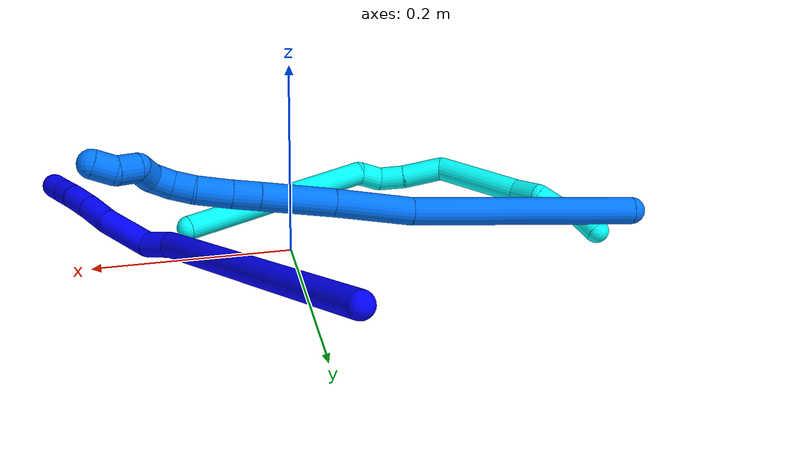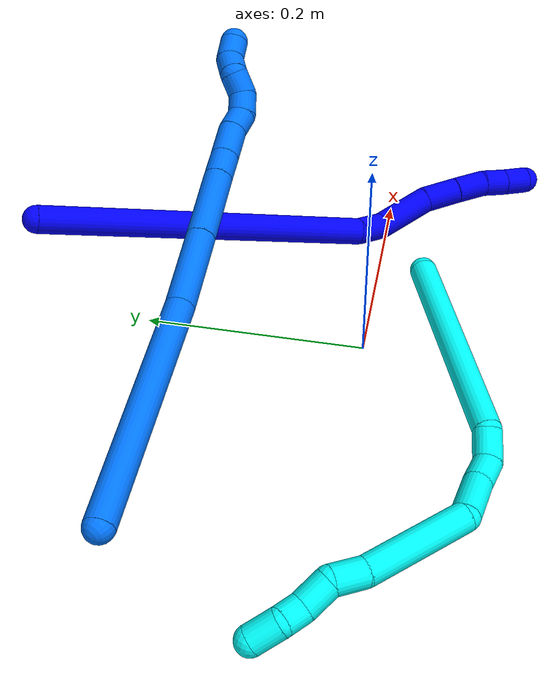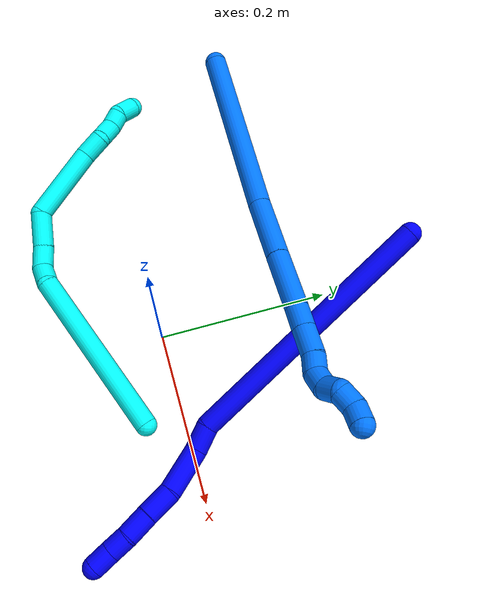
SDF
<sdf version="1.7">
 <world name="default">
  <model name="photoneo_s_sensor">
   <static>1</static>
   <pose>0 0 2 1.57079 1.57079 3.14159</pose>
   <link name="link">
    <inertial><mass>0.1</mass></inertial>
    <sensor name="sensor" type="depth">
     <update_rate>30</update_rate>
     <camera>
      <horizontal_fov>1.22</horizontal_fov>
      <image><width>1920</width><height>1200</height><format>B8G8R8</format></image>
      <clip><near>0.1</near><far>4</far></clip>
      <depth_camera><output>points</output></depth_camera>
     </camera>
     <plugin name="camera_plugin" filename="libgazebo_ros_depth_camera.so">
      <baseline>0.2</baseline>
      <alwaysOn>1</alwaysOn>
      <updateRate>0.0</updateRate>
      <cameraName>camera_ir</cameraName>
      <imageTopicName>/camera/color/image_raw</imageTopicName>
      <cameraInfoTopicName>/camera/color/camera_info</cameraInfoTopicName>
      <depthImageTopicName>/camera/depth/image_raw</depthImageTopicName>
      <depthImageCameraInfoTopicName>/camera/depth/camera_info</depthImageCameraInfoTopicName>
      <pointCloudTopicName>/camera/depth/points</pointCloudTopicName>
      <frameName>fr_optical</frameName>
      <pointCloudCutoff>0.1</pointCloudCutoff>
      <pointCloudCutoffMax>2.0</pointCloudCutoffMax>
      <distortionK1>0</distortionK1>
      <distortionK2>0</distortionK2>
      <distortionK3>0</distortionK3>
      <distortionT1>0</distortionT1>
      <distortionT2>0</distortionT2>
      <CxPrime>0</CxPrime>
      <Cx>0</Cx>
      <Cy>0</Cy>
      <focalLength>0</focalLength>
      <hackBaseline>0</hackBaseline>
     </plugin>
    </sensor>
   </link>
  </model>
  <model name="bin">
   <static>1</static>
   <link name="bottom">
    <collision name="collision-bottom">
     <pose>0 0 -0.01 0 -0 0</pose>
     <geometry><box><size>0.8 0.6 0.02</size></box></geometry>
     <surface>
      <friction><ode><mu>100</mu><mu2>100</mu2></ode></friction>
      <contact><collide_bitmask>65535</collide_bitmask></contact>
     </surface>
    </collision>
   </link>
   <link name="west_wall">
    <collision name="collision-west_wall">
     <pose>-0.41 0 0.1 0 -0 0</pose>
     <geometry><box><size>0.02 0.6 0.2</size></box></geometry>
     <surface>
      <friction><ode><mu>100</mu><mu2>100</mu2></ode></friction>
      <contact><collide_bitmask>65535</collide_bitmask></contact>
     </surface>
    </collision>
   </link>
   <link name="east_wall">
    <collision name="collision-east_wall">
     <pose>0.41 0 0.1 0 -0 0</pose>
     <geometry><box><size>0.02 0.6 0.2</size></box></geometry>
     <surface>
      <friction><ode><mu>100</mu><mu2>100</mu2></ode></friction>
      <contact><collide_bitmask>65535</collide_bitmask></contact>
     </surface>
    </collision>
   </link>
   <link name="south_wall">
    <collision name="collision-south_wall">
     <pose>0 -0.31 0.1 0 -0 0</pose>
     <geometry><box><size>0.8 0.02 0.2</size></box></geometry>
     <surface>
      <friction><ode><mu>100</mu><mu2>100</mu2></ode></friction>
      <contact><collide_bitmask>65535</collide_bitmask></contact>
     </surface>
    </collision>
   </link>
   <link name="north_wall">
    <collision name="collision-north_wall">
     <pose>0 0.31 0.1 0 -0 0</pose>
     <geometry><box><size>0.8 0.02 0.2</size></box></geometry>
     <surface>
      <friction><ode><mu>100</mu><mu2>100</mu2></ode></friction>
      <contact><collide_bitmask>65535</collide_bitmask></contact>
     </surface>
    </collision>
   </link>
  </model>
  <model name="1">
   <static>0</static>
   <link name="1">
    <collision name="collision-cylinder-e_1_1_4">
     <pose>0.039707 -0.030496 0.144588 0.207872 0.262507 0.027539</pose>
     <geometry><cylinder><radius>0.0125</radius><length>0.306021</length></cylinder></geometry>
     <surface>
      <friction><ode><mu>1.16</mu><mu2>1.16</mu2><slip1>0</slip1><slip2>0</slip2></ode></friction>
      <contact><ode><kp>1e+06</kp><kd>1</kd><max_vel>0</max_vel><min_depth>0.001</min_depth></ode></contact>
     </surface>
    </collision>
    <visual name="visual-cylinder-e_1_1_4">
     <pose>0.039707 -0.030496 0.144588 0.207872 0.262507 0.027539</pose>
     <geometry><cylinder><radius>0.0125</radius><length>0.306021</length></cylinder></geometry>
     <material><ambient>0 0 1 1</ambient></material>
    </visual>
    <collision name="collision-cylinder-e_2_4_5">
     <pose>0.083976 -0.058505 0.303322 -0.174083 0.307562 -0.02705</pose>
     <geometry><cylinder><radius>0.0125</radius><length>0.030142</length></cylinder></geometry>
     <surface>
      <friction><ode><mu>1.16</mu><mu2>1.16</mu2><slip1>0</slip1><slip2>0</slip2></ode></friction>
      <contact><ode><kp>1e+06</kp><kd>1</kd><max_vel>0</max_vel><min_depth>0.001</min_depth></ode></contact>
     </surface>
    </collision>
    <visual name="visual-cylinder-e_2_4_5">
     <pose>0.083976 -0.058505 0.303322 -0.174083 0.307562 -0.02705</pose>
     <geometry><cylinder><radius>0.0125</radius><length>0.030142</length></cylinder></geometry>
     <material><ambient>0 0 1 1</ambient></material>
    </visual>
    <collision name="collision-cylinder-e_3_5_6">
     <pose>0.084824 -0.052026 0.343934 -0.149663 -0.137899 0.010355</pose>
     <geometry><cylinder><radius>0.0125</radius><length>0.054043</length></cylinder></geometry>
     <surface>
      <friction><ode><mu>1.16</mu><mu2>1.16</mu2><slip1>0</slip1><slip2>0</slip2></ode></friction>
      <contact><ode><kp>1e+06</kp><kd>1</kd><max_vel>0</max_vel><min_depth>0.001</min_depth></ode></contact>
     </surface>
    </collision>
    <visual name="visual-cylinder-e_3_5_6">
     <pose>0.084824 -0.052026 0.343934 -0.149663 -0.137899 0.010355</pose>
     <geometry><cylinder><radius>0.0125</radius><length>0.054043</length></cylinder></geometry>
     <material><ambient>0 0 1 1</ambient></material>
    </visual>
    <collision name="collision-cylinder-e_4_6_7">
     <pose>0.07992 -0.049669 0.387039 0.097863 -0.071012 -0.003479</pose>
     <geometry><cylinder><radius>0.0125</radius><length>0.033524</length></cylinder></geometry>
     <surface>
      <friction><ode><mu>1.16</mu><mu2>1.16</mu2><slip1>0</slip1><slip2>0</slip2></ode></friction>
      <contact><ode><kp>1e+06</kp><kd>1</kd><max_vel>0</max_vel><min_depth>0.001</min_depth></ode></contact>
     </surface>
    </collision>
    <visual name="visual-cylinder-e_4_6_7">
     <pose>0.07992 -0.049669 0.387039 0.097863 -0.071012 -0.003479</pose>
     <geometry><cylinder><radius>0.0125</radius><length>0.033524</length></cylinder></geometry>
     <material><ambient>0 0 1 1</ambient></material>
    </visual>
    <collision name="collision-cylinder-e_5_7_8">
     <pose>0.078472 -0.052462 0.418593 0.077551 -0.017314 -0.000672</pose>
     <geometry><cylinder><radius>0.0125</radius><length>0.029922</length></cylinder></geometry>
     <surface>
      <friction><ode><mu>1.16</mu><mu2>1.16</mu2><slip1>0</slip1><slip2>0</slip2></ode></friction>
      <contact><ode><kp>1e+06</kp><kd>1</kd><max_vel>0</max_vel><min_depth>0.001</min_depth></ode></contact>
     </surface>
    </collision>
    <visual name="visual-cylinder-e_5_7_8">
     <pose>0.078472 -0.052462 0.418593 0.077551 -0.017314 -0.000672</pose>
     <geometry><cylinder><radius>0.0125</radius><length>0.029922</length></cylinder></geometry>
     <material><ambient>0 0 1 1</ambient></material>
    </visual>
    <collision name="collision-cylinder-e_6_8_9">
     <pose>0.079764 -0.055832 0.444472 0.199059 0.137829 0.013785</pose>
     <geometry><cylinder><radius>0.0125</radius><length>0.022586</length></cylinder></geometry>
     <surface>
      <friction><ode><mu>1.16</mu><mu2>1.16</mu2><slip1>0</slip1><slip2>0</slip2></ode></friction>
      <contact><ode><kp>1e+06</kp><kd>1</kd><max_vel>0</max_vel><min_depth>0.001</min_depth></ode></contact>
     </surface>
    </collision>
    <visual name="visual-cylinder-e_6_8_9">
     <pose>0.079764 -0.055832 0.444472 0.199059 0.137829 0.013785</pose>
     <geometry><cylinder><radius>0.0125</radius><length>0.022586</length></cylinder></geometry>
     <material><ambient>0 0 1 1</ambient></material>
    </visual>
    <collision name="collision-cylinder-e_7_9_2">
     <pose>0.08249 -0.060022 0.467093 0.168066 0.098988 0.008345</pose>
     <geometry><cylinder><radius>0.0125</radius><length>0.023763</length></cylinder></geometry>
     <surface>
      <friction><ode><mu>1.16</mu><mu2>1.16</mu2><slip1>0</slip1><slip2>0</slip2></ode></friction>
      <contact><ode><kp>1e+06</kp><kd>1</kd><max_vel>0</max_vel><min_depth>0.001</min_depth></ode></contact>
     </surface>
    </collision>
    <visual name="visual-cylinder-e_7_9_2">
     <pose>0.08249 -0.060022 0.467093 0.168066 0.098988 0.008345</pose>
     <geometry><cylinder><radius>0.0125</radius><length>0.023763</length></cylinder></geometry>
     <material><ambient>0 0 1 1</ambient></material>
    </visual>
    <collision name="collision-sphere-2">
     <pose>0.083664 -0.062 0.47875 0 -0 0</pose>
     <geometry><sphere><radius>0.0125</radius></sphere></geometry>
     <surface>
      <friction><ode><mu>1.16</mu><mu2>1.16</mu2><slip1>0</slip1><slip2>0</slip2></ode></friction>
      <contact><ode><kp>1e+06</kp><kd>1</kd><max_vel>0</max_vel><min_depth>0.001</min_depth></ode></contact>
     </surface>
    </collision>
    <visual name="visual-sphere-2">
     <pose>0.083664 -0.062 0.47875 0 -0 0</pose>
     <geometry><sphere><radius>0.0125</radius></sphere></geometry>
     <material><ambient>0 0 1 1</ambient></material>
    </visual>
    <collision name="collision-sphere-9">
     <pose>0.081316 -0.058044 0.455437 0 -0 0</pose>
     <geometry><sphere><radius>0.0125</radius></sphere></geometry>
     <surface>
      <friction><ode><mu>1.16</mu><mu2>1.16</mu2><slip1>0</slip1><slip2>0</slip2></ode></friction>
      <contact><ode><kp>1e+06</kp><kd>1</kd><max_vel>0</max_vel><min_depth>0.001</min_depth></ode></contact>
     </surface>
    </collision>
    <visual name="visual-sphere-9">
     <pose>0.081316 -0.058044 0.455437 0 -0 0</pose>
     <geometry><sphere><radius>0.0125</radius></sphere></geometry>
     <material><ambient>0 0 1 1</ambient></material>
    </visual>
    <collision name="collision-sphere-4">
     <pose>0.079413 -0.060993 0.289175 0 -0 0</pose>
     <geometry><sphere><radius>0.0125</radius></sphere></geometry>
     <surface>
      <friction><ode><mu>1.16</mu><mu2>1.16</mu2><slip1>0</slip1><slip2>0</slip2></ode></friction>
      <contact><ode><kp>1e+06</kp><kd>1</kd><max_vel>0</max_vel><min_depth>0.001</min_depth></ode></contact>
     </surface>
    </collision>
    <visual name="visual-sphere-4">
     <pose>0.079413 -0.060993 0.289175 0 -0 0</pose>
     <geometry><sphere><radius>0.0125</radius></sphere></geometry>
     <material><ambient>0 0 1 1</ambient></material>
    </visual>
    <collision name="collision-sphere-1">
     <geometry><sphere><radius>0.0125</radius></sphere></geometry>
     <surface>
      <friction><ode><mu>1.16</mu><mu2>1.16</mu2><slip1>0</slip1><slip2>0</slip2></ode></friction>
      <contact><ode><kp>1e+06</kp><kd>1</kd><max_vel>0</max_vel><min_depth>0.001</min_depth></ode></contact>
     </surface>
    </collision>
    <visual name="visual-sphere-1">
     <geometry><sphere><radius>0.0125</radius></sphere></geometry>
     <material><ambient>0 0 1 1</ambient></material>
    </visual>
    <collision name="collision-sphere-8">
     <pose>0.078213 -0.05362 0.433507 0 -0 0</pose>
     <geometry><sphere><radius>0.0125</radius></sphere></geometry>
     <surface>
      <friction><ode><mu>1.16</mu><mu2>1.16</mu2><slip1>0</slip1><slip2>0</slip2></ode></friction>
      <contact><ode><kp>1e+06</kp><kd>1</kd><max_vel>0</max_vel><min_depth>0.001</min_depth></ode></contact>
     </surface>
    </collision>
    <visual name="visual-sphere-8">
     <pose>0.078213 -0.05362 0.433507 0 -0 0</pose>
     <geometry><sphere><radius>0.0125</radius></sphere></geometry>
     <material><ambient>0 0 1 1</ambient></material>
    </visual>
    <collision name="collision-sphere-5">
     <pose>0.088538 -0.056017 0.317468 0 -0 0</pose>
     <geometry><sphere><radius>0.0125</radius></sphere></geometry>
     <surface>
      <friction><ode><mu>1.16</mu><mu2>1.16</mu2><slip1>0</slip1><slip2>0</slip2></ode></friction>
      <contact><ode><kp>1e+06</kp><kd>1</kd><max_vel>0</max_vel><min_depth>0.001</min_depth></ode></contact>
     </surface>
    </collision>
    <visual name="visual-sphere-5">
     <pose>0.088538 -0.056017 0.317468 0 -0 0</pose>
     <geometry><sphere><radius>0.0125</radius></sphere></geometry>
     <material><ambient>0 0 1 1</ambient></material>
    </visual>
    <collision name="collision-sphere-6">
     <pose>0.08111 -0.048035 0.370399 0 -0 0</pose>
     <geometry><sphere><radius>0.0125</radius></sphere></geometry>
     <surface>
      <friction><ode><mu>1.16</mu><mu2>1.16</mu2><slip1>0</slip1><slip2>0</slip2></ode></friction>
      <contact><ode><kp>1e+06</kp><kd>1</kd><max_vel>0</max_vel><min_depth>0.001</min_depth></ode></contact>
     </surface>
    </collision>
    <visual name="visual-sphere-6">
     <pose>0.08111 -0.048035 0.370399 0 -0 0</pose>
     <geometry><sphere><radius>0.0125</radius></sphere></geometry>
     <material><ambient>0 0 1 1</ambient></material>
    </visual>
    <collision name="collision-sphere-7">
     <pose>0.078731 -0.051303 0.403679 0 -0 0</pose>
     <geometry><sphere><radius>0.0125</radius></sphere></geometry>
     <surface>
      <friction><ode><mu>1.16</mu><mu2>1.16</mu2><slip1>0</slip1><slip2>0</slip2></ode></friction>
      <contact><ode><kp>1e+06</kp><kd>1</kd><max_vel>0</max_vel><min_depth>0.001</min_depth></ode></contact>
     </surface>
    </collision>
    <visual name="visual-sphere-7">
     <pose>0.078731 -0.051303 0.403679 0 -0 0</pose>
     <geometry><sphere><radius>0.0125</radius></sphere></geometry>
     <material><ambient>0 0 1 1</ambient></material>
    </visual>
    <inertial>
     <pose>0.056111 -0.039659 0.23723 0 -0 0</pose>
     <mass>0.5</mass>
     <inertia>
      <ixx>0.002418</ixx>
      <ixy>0</ixy>
      <ixz>0</ixz>
      <iyy>0.00244</iyy>
      <iyz>0</iyz>
      <izz>-0.000108</izz>
     </inertia>
    </inertial>
   </link>
   <pose>-0.006765 0.288398 0.114786 1.46129 1.46125 0.521222</pose>
  </model>
  <model name="3">
   <static>0</static>
   <link name="3">
    <collision name="collision-cylinder-e_1_1_4">
     <pose>-0.075661 -0.007744 0.070565 0.109305 -0.817246 -0.047367</pose>
     <geometry><cylinder><radius>0.0125</radius><length>0.207499</length></cylinder></geometry>
     <surface>
      <friction><ode><mu>1.16</mu><mu2>1.16</mu2><slip1>0</slip1><slip2>0</slip2></ode></friction>
      <contact><ode><kp>1e+06</kp><kd>1</kd><max_vel>0</max_vel><min_depth>0.001</min_depth></ode></contact>
     </surface>
    </collision>
    <visual name="visual-cylinder-e_1_1_4">
     <pose>-0.075661 -0.007744 0.070565 0.109305 -0.817246 -0.047367</pose>
     <geometry><cylinder><radius>0.0125</radius><length>0.207499</length></cylinder></geometry>
     <material><ambient>0.003922 1 0.996078 1</ambient></material>
    </visual>
    <collision name="collision-cylinder-e_2_4_5">
     <pose>-0.16107 -0.022652 0.147243 0.864384 -0.802645 -0.3866</pose>
     <geometry><cylinder><radius>0.0125</radius><length>0.027108</length></cylinder></geometry>
     <surface>
      <friction><ode><mu>1.16</mu><mu2>1.16</mu2><slip1>0</slip1><slip2>0</slip2></ode></friction>
      <contact><ode><kp>1e+06</kp><kd>1</kd><max_vel>0</max_vel><min_depth>0.001</min_depth></ode></contact>
     </surface>
    </collision>
    <visual name="visual-cylinder-e_2_4_5">
     <pose>-0.16107 -0.022652 0.147243 0.864384 -0.802645 -0.3866</pose>
     <geometry><cylinder><radius>0.0125</radius><length>0.027108</length></cylinder></geometry>
     <material><ambient>0.003922 1 0.996078 1</ambient></material>
    </visual>
    <collision name="collision-cylinder-e_3_5_6">
     <pose>-0.184411 -0.030031 0.155147 0.119801 -1.43884 -0.10498</pose>
     <geometry><cylinder><radius>0.0125</radius><length>0.027425</length></cylinder></geometry>
     <surface>
      <friction><ode><mu>1.16</mu><mu2>1.16</mu2><slip1>0</slip1><slip2>0</slip2></ode></friction>
      <contact><ode><kp>1e+06</kp><kd>1</kd><max_vel>0</max_vel><min_depth>0.001</min_depth></ode></contact>
     </surface>
    </collision>
    <visual name="visual-cylinder-e_3_5_6">
     <pose>-0.184411 -0.030031 0.155147 0.119801 -1.43884 -0.10498</pose>
     <geometry><cylinder><radius>0.0125</radius><length>0.027425</length></cylinder></geometry>
     <material><ambient>0.003922 1 0.996078 1</ambient></material>
    </visual>
    <collision name="collision-cylinder-e_4_6_7">
     <pose>-0.218633 -0.028451 0.161374 -0.384753 -1.34286 0.307112</pose>
     <geometry><cylinder><radius>0.0125</radius><length>0.042354</length></cylinder></geometry>
     <surface>
      <friction><ode><mu>1.16</mu><mu2>1.16</mu2><slip1>0</slip1><slip2>0</slip2></ode></friction>
      <contact><ode><kp>1e+06</kp><kd>1</kd><max_vel>0</max_vel><min_depth>0.001</min_depth></ode></contact>
     </surface>
    </collision>
    <visual name="visual-cylinder-e_4_6_7">
     <pose>-0.218633 -0.028451 0.161374 -0.384753 -1.34286 0.307112</pose>
     <geometry><cylinder><radius>0.0125</radius><length>0.042354</length></cylinder></geometry>
     <material><ambient>0.003922 1 0.996078 1</ambient></material>
    </visual>
    <collision name="collision-cylinder-e_5_7_8">
     <pose>-0.281284 -0.032454 0.145959 2.85736 -1.11347 -2.68968</pose>
     <geometry><cylinder><radius>0.0125</radius><length>0.09367</length></cylinder></geometry>
     <surface>
      <friction><ode><mu>1.16</mu><mu2>1.16</mu2><slip1>0</slip1><slip2>0</slip2></ode></friction>
      <contact><ode><kp>1e+06</kp><kd>1</kd><max_vel>0</max_vel><min_depth>0.001</min_depth></ode></contact>
     </surface>
    </collision>
    <visual name="visual-cylinder-e_5_7_8">
     <pose>-0.281284 -0.032454 0.145959 2.85736 -1.11347 -2.68968</pose>
     <geometry><cylinder><radius>0.0125</radius><length>0.09367</length></cylinder></geometry>
     <material><ambient>0.003922 1 0.996078 1</ambient></material>
    </visual>
    <collision name="collision-cylinder-e_6_8_9">
     <pose>-0.335368 -0.037405 0.117991 -3.03746 -0.975917 2.94585</pose>
     <geometry><cylinder><radius>0.0125</radius><length>0.029128</length></cylinder></geometry>
     <surface>
      <friction><ode><mu>1.16</mu><mu2>1.16</mu2><slip1>0</slip1><slip2>0</slip2></ode></friction>
      <contact><ode><kp>1e+06</kp><kd>1</kd><max_vel>0</max_vel><min_depth>0.001</min_depth></ode></contact>
     </surface>
    </collision>
    <visual name="visual-cylinder-e_6_8_9">
     <pose>-0.335368 -0.037405 0.117991 -3.03746 -0.975917 2.94585</pose>
     <geometry><cylinder><radius>0.0125</radius><length>0.029128</length></cylinder></geometry>
     <material><ambient>0.003922 1 0.996078 1</ambient></material>
    </visual>
    <collision name="collision-cylinder-e_7_9_10">
     <pose>-0.358503 -0.043183 0.105717 2.13105 -0.955754 -1.505</pose>
     <geometry><cylinder><radius>0.0125</radius><length>0.027116</length></cylinder></geometry>
     <surface>
      <friction><ode><mu>1.16</mu><mu2>1.16</mu2><slip1>0</slip1><slip2>0</slip2></ode></friction>
      <contact><ode><kp>1e+06</kp><kd>1</kd><max_vel>0</max_vel><min_depth>0.001</min_depth></ode></contact>
     </surface>
    </collision>
    <visual name="visual-cylinder-e_7_9_10">
     <pose>-0.358503 -0.043183 0.105717 2.13105 -0.955754 -1.505</pose>
     <geometry><cylinder><radius>0.0125</radius><length>0.027116</length></cylinder></geometry>
     <material><ambient>0.003922 1 0.996078 1</ambient></material>
    </visual>
    <collision name="collision-cylinder-e_8_10_11">
     <pose>-0.379017 -0.050735 0.098354 2.86075 -1.23113 -2.74706</pose>
     <geometry><cylinder><radius>0.0125</radius><length>0.020025</length></cylinder></geometry>
     <surface>
      <friction><ode><mu>1.16</mu><mu2>1.16</mu2><slip1>0</slip1><slip2>0</slip2></ode></friction>
      <contact><ode><kp>1e+06</kp><kd>1</kd><max_vel>0</max_vel><min_depth>0.001</min_depth></ode></contact>
     </surface>
    </collision>
    <visual name="visual-cylinder-e_8_10_11">
     <pose>-0.379017 -0.050735 0.098354 2.86075 -1.23113 -2.74706</pose>
     <geometry><cylinder><radius>0.0125</radius><length>0.020025</length></cylinder></geometry>
     <material><ambient>0.003922 1 0.996078 1</ambient></material>
    </visual>
    <collision name="collision-cylinder-e_9_11_2">
     <pose>-0.3971 -0.058132 0.088204 2.3914 -0.738468 -1.55349</pose>
     <geometry><cylinder><radius>0.0125</radius><length>0.025676</length></cylinder></geometry>
     <surface>
      <friction><ode><mu>1.16</mu><mu2>1.16</mu2><slip1>0</slip1><slip2>0</slip2></ode></friction>
      <contact><ode><kp>1e+06</kp><kd>1</kd><max_vel>0</max_vel><min_depth>0.001</min_depth></ode></contact>
     </surface>
    </collision>
    <visual name="visual-cylinder-e_9_11_2">
     <pose>-0.3971 -0.058132 0.088204 2.3914 -0.738468 -1.55349</pose>
     <geometry><cylinder><radius>0.0125</radius><length>0.025676</length></cylinder></geometry>
     <material><ambient>0.003922 1 0.996078 1</ambient></material>
    </visual>
    <collision name="collision-sphere-2">
     <pose>-0.405742 -0.064605 0.081258 0 -0 0</pose>
     <geometry><sphere><radius>0.0125</radius></sphere></geometry>
     <surface>
      <friction><ode><mu>1.16</mu><mu2>1.16</mu2><slip1>0</slip1><slip2>0</slip2></ode></friction>
      <contact><ode><kp>1e+06</kp><kd>1</kd><max_vel>0</max_vel><min_depth>0.001</min_depth></ode></contact>
     </surface>
    </collision>
    <visual name="visual-sphere-2">
     <pose>-0.405742 -0.064605 0.081258 0 -0 0</pose>
     <geometry><sphere><radius>0.0125</radius></sphere></geometry>
     <material><ambient>0.003922 1 0.996078 1</ambient></material>
    </visual>
    <collision name="collision-sphere-11">
     <pose>-0.388458 -0.051659 0.095149 0 -0 0</pose>
     <geometry><sphere><radius>0.0125</radius></sphere></geometry>
     <surface>
      <friction><ode><mu>1.16</mu><mu2>1.16</mu2><slip1>0</slip1><slip2>0</slip2></ode></friction>
      <contact><ode><kp>1e+06</kp><kd>1</kd><max_vel>0</max_vel><min_depth>0.001</min_depth></ode></contact>
     </surface>
    </collision>
    <visual name="visual-sphere-11">
     <pose>-0.388458 -0.051659 0.095149 0 -0 0</pose>
     <geometry><sphere><radius>0.0125</radius></sphere></geometry>
     <material><ambient>0.003922 1 0.996078 1</ambient></material>
    </visual>
    <collision name="collision-sphere-10">
     <pose>-0.369577 -0.04981 0.10156 0 -0 0</pose>
     <geometry><sphere><radius>0.0125</radius></sphere></geometry>
     <surface>
      <friction><ode><mu>1.16</mu><mu2>1.16</mu2><slip1>0</slip1><slip2>0</slip2></ode></friction>
      <contact><ode><kp>1e+06</kp><kd>1</kd><max_vel>0</max_vel><min_depth>0.001</min_depth></ode></contact>
     </surface>
    </collision>
    <visual name="visual-sphere-10">
     <pose>-0.369577 -0.04981 0.10156 0 -0 0</pose>
     <geometry><sphere><radius>0.0125</radius></sphere></geometry>
     <material><ambient>0.003922 1 0.996078 1</ambient></material>
    </visual>
    <collision name="collision-sphere-9">
     <pose>-0.34743 -0.036556 0.109874 0 -0 0</pose>
     <geometry><sphere><radius>0.0125</radius></sphere></geometry>
     <surface>
      <friction><ode><mu>1.16</mu><mu2>1.16</mu2><slip1>0</slip1><slip2>0</slip2></ode></friction>
      <contact><ode><kp>1e+06</kp><kd>1</kd><max_vel>0</max_vel><min_depth>0.001</min_depth></ode></contact>
     </surface>
    </collision>
    <visual name="visual-sphere-9">
     <pose>-0.34743 -0.036556 0.109874 0 -0 0</pose>
     <geometry><sphere><radius>0.0125</radius></sphere></geometry>
     <material><ambient>0.003922 1 0.996078 1</ambient></material>
    </visual>
    <collision name="collision-sphere-4">
     <pose>-0.151321 -0.015488 0.14113 0 -0 0</pose>
     <geometry><sphere><radius>0.0125</radius></sphere></geometry>
     <surface>
      <friction><ode><mu>1.16</mu><mu2>1.16</mu2><slip1>0</slip1><slip2>0</slip2></ode></friction>
      <contact><ode><kp>1e+06</kp><kd>1</kd><max_vel>0</max_vel><min_depth>0.001</min_depth></ode></contact>
     </surface>
    </collision>
    <visual name="visual-sphere-4">
     <pose>-0.151321 -0.015488 0.14113 0 -0 0</pose>
     <geometry><sphere><radius>0.0125</radius></sphere></geometry>
     <material><ambient>0.003922 1 0.996078 1</ambient></material>
    </visual>
    <collision name="collision-sphere-1">
     <geometry><sphere><radius>0.0125</radius></sphere></geometry>
     <surface>
      <friction><ode><mu>1.16</mu><mu2>1.16</mu2><slip1>0</slip1><slip2>0</slip2></ode></friction>
      <contact><ode><kp>1e+06</kp><kd>1</kd><max_vel>0</max_vel><min_depth>0.001</min_depth></ode></contact>
     </surface>
    </collision>
    <visual name="visual-sphere-1">
     <geometry><sphere><radius>0.0125</radius></sphere></geometry>
     <material><ambient>0.003922 1 0.996078 1</ambient></material>
    </visual>
    <collision name="collision-sphere-8">
     <pose>-0.323306 -0.038253 0.126108 0 -0 0</pose>
     <geometry><sphere><radius>0.0125</radius></sphere></geometry>
     <surface>
      <friction><ode><mu>1.16</mu><mu2>1.16</mu2><slip1>0</slip1><slip2>0</slip2></ode></friction>
      <contact><ode><kp>1e+06</kp><kd>1</kd><max_vel>0</max_vel><min_depth>0.001</min_depth></ode></contact>
     </surface>
    </collision>
    <visual name="visual-sphere-8">
     <pose>-0.323306 -0.038253 0.126108 0 -0 0</pose>
     <geometry><sphere><radius>0.0125</radius></sphere></geometry>
     <material><ambient>0.003922 1 0.996078 1</ambient></material>
    </visual>
    <collision name="collision-sphere-5">
     <pose>-0.170818 -0.029816 0.153356 0 -0 0</pose>
     <geometry><sphere><radius>0.0125</radius></sphere></geometry>
     <surface>
      <friction><ode><mu>1.16</mu><mu2>1.16</mu2><slip1>0</slip1><slip2>0</slip2></ode></friction>
      <contact><ode><kp>1e+06</kp><kd>1</kd><max_vel>0</max_vel><min_depth>0.001</min_depth></ode></contact>
     </surface>
    </collision>
    <visual name="visual-sphere-5">
     <pose>-0.170818 -0.029816 0.153356 0 -0 0</pose>
     <geometry><sphere><radius>0.0125</radius></sphere></geometry>
     <material><ambient>0.003922 1 0.996078 1</ambient></material>
    </visual>
    <collision name="collision-sphere-6">
     <pose>-0.198004 -0.030247 0.156939 0 -0 0</pose>
     <geometry><sphere><radius>0.0125</radius></sphere></geometry>
     <surface>
      <friction><ode><mu>1.16</mu><mu2>1.16</mu2><slip1>0</slip1><slip2>0</slip2></ode></friction>
      <contact><ode><kp>1e+06</kp><kd>1</kd><max_vel>0</max_vel><min_depth>0.001</min_depth></ode></contact>
     </surface>
    </collision>
    <visual name="visual-sphere-6">
     <pose>-0.198004 -0.030247 0.156939 0 -0 0</pose>
     <geometry><sphere><radius>0.0125</radius></sphere></geometry>
     <material><ambient>0.003922 1 0.996078 1</ambient></material>
    </visual>
    <collision name="collision-sphere-7">
     <pose>-0.239262 -0.026655 0.165809 0 -0 0</pose>
     <geometry><sphere><radius>0.0125</radius></sphere></geometry>
     <surface>
      <friction><ode><mu>1.16</mu><mu2>1.16</mu2><slip1>0</slip1><slip2>0</slip2></ode></friction>
      <contact><ode><kp>1e+06</kp><kd>1</kd><max_vel>0</max_vel><min_depth>0.001</min_depth></ode></contact>
     </surface>
    </collision>
    <visual name="visual-sphere-7">
     <pose>-0.239262 -0.026655 0.165809 0 -0 0</pose>
     <geometry><sphere><radius>0.0125</radius></sphere></geometry>
     <material><ambient>0.003922 1 0.996078 1</ambient></material>
    </visual>
    <inertial>
     <pose>-0.196013 -0.024117 0.107866 0 -0 0</pose>
     <mass>0.5</mass>
     <inertia>
      <ixx>0.000414</ixx>
      <ixy>0</ixy>
      <ixz>0</ixz>
      <iyy>0.000794</iyy>
      <iyz>0</iyz>
      <izz>0.000709</izz>
     </inertia>
    </inertial>
   </link>
   <pose>0.099444 -0.043072 0.013027 1.55629 0.151259 -0.391866</pose>
  </model>
  <model name="14">
   <static>0</static>
   <link name="14">
    <collision name="collision-cylinder-e_1_1_4">
     <pose>0.022113 0.034612 -0.094613 -2.79089 0.216069 -1.09863</pose>
     <geometry><cylinder><radius>0.0125</radius><length>0.206286</length></cylinder></geometry>
     <surface>
      <friction><ode><mu>1.16</mu><mu2>1.16</mu2><slip1>0</slip1><slip2>0</slip2></ode></friction>
      <contact><ode><kp>1e+06</kp><kd>1</kd><max_vel>0</max_vel><min_depth>0.001</min_depth></ode></contact>
     </surface>
    </collision>
    <visual name="visual-cylinder-e_1_1_4">
     <pose>0.022113 0.034612 -0.094613 -2.79089 0.216069 -1.09863</pose>
     <geometry><cylinder><radius>0.0125</radius><length>0.206286</length></cylinder></geometry>
     <material><ambient>0 0.462745 1 1</ambient></material>
    </visual>
    <collision name="collision-cylinder-e_2_4_5">
     <pose>0.056177 0.080147 -0.220983 -2.81028 0.34188 -1.6028</pose>
     <geometry><cylinder><radius>0.0125</radius><length>0.071295</length></cylinder></geometry>
     <surface>
      <friction><ode><mu>1.16</mu><mu2>1.16</mu2><slip1>0</slip1><slip2>0</slip2></ode></friction>
      <contact><ode><kp>1e+06</kp><kd>1</kd><max_vel>0</max_vel><min_depth>0.001</min_depth></ode></contact>
     </surface>
    </collision>
    <visual name="visual-cylinder-e_2_4_5">
     <pose>0.056177 0.080147 -0.220983 -2.81028 0.34188 -1.6028</pose>
     <geometry><cylinder><radius>0.0125</radius><length>0.071295</length></cylinder></geometry>
     <material><ambient>0 0.462745 1 1</ambient></material>
    </visual>
    <collision name="collision-cylinder-e_3_5_6">
     <pose>0.078712 0.101727 -0.282148 -2.79396 0.326296 -1.50629</pose>
     <geometry><cylinder><radius>0.0125</radius><length>0.066039</length></cylinder></geometry>
     <surface>
      <friction><ode><mu>1.16</mu><mu2>1.16</mu2><slip1>0</slip1><slip2>0</slip2></ode></friction>
      <contact><ode><kp>1e+06</kp><kd>1</kd><max_vel>0</max_vel><min_depth>0.001</min_depth></ode></contact>
     </surface>
    </collision>
    <visual name="visual-cylinder-e_3_5_6">
     <pose>0.078712 0.101727 -0.282148 -2.79396 0.326296 -1.50629</pose>
     <geometry><cylinder><radius>0.0125</radius><length>0.066039</length></cylinder></geometry>
     <material><ambient>0 0.462745 1 1</ambient></material>
    </visual>
    <collision name="collision-cylinder-e_4_6_7">
     <pose>0.093033 0.116283 -0.322559 -2.80101 0.309776 -1.47446</pose>
     <geometry><cylinder><radius>0.0125</radius><length>0.024518</length></cylinder></geometry>
     <surface>
      <friction><ode><mu>1.16</mu><mu2>1.16</mu2><slip1>0</slip1><slip2>0</slip2></ode></friction>
      <contact><ode><kp>1e+06</kp><kd>1</kd><max_vel>0</max_vel><min_depth>0.001</min_depth></ode></contact>
     </surface>
    </collision>
    <visual name="visual-cylinder-e_4_6_7">
     <pose>0.093033 0.116283 -0.322559 -2.80101 0.309776 -1.47446</pose>
     <geometry><cylinder><radius>0.0125</radius><length>0.024518</length></cylinder></geometry>
     <material><ambient>0 0.462745 1 1</ambient></material>
    </visual>
    <collision name="collision-cylinder-e_5_7_8">
     <pose>0.102148 0.124998 -0.347579 -2.81065 0.348081 -1.62226</pose>
     <geometry><cylinder><radius>0.0125</radius><length>0.03153</length></cylinder></geometry>
     <surface>
      <friction><ode><mu>1.16</mu><mu2>1.16</mu2><slip1>0</slip1><slip2>0</slip2></ode></friction>
      <contact><ode><kp>1e+06</kp><kd>1</kd><max_vel>0</max_vel><min_depth>0.001</min_depth></ode></contact>
     </surface>
    </collision>
    <visual name="visual-cylinder-e_5_7_8">
     <pose>0.102148 0.124998 -0.347579 -2.81065 0.348081 -1.62226</pose>
     <geometry><cylinder><radius>0.0125</radius><length>0.03153</length></cylinder></geometry>
     <material><ambient>0 0.462745 1 1</ambient></material>
    </visual>
    <collision name="collision-cylinder-e_6_8_9">
     <pose>0.110431 0.130804 -0.371124 -3.03797 0.294461 -2.4688</pose>
     <geometry><cylinder><radius>0.0125</radius><length>0.020023</length></cylinder></geometry>
     <surface>
      <friction><ode><mu>1.16</mu><mu2>1.16</mu2><slip1>0</slip1><slip2>0</slip2></ode></friction>
      <contact><ode><kp>1e+06</kp><kd>1</kd><max_vel>0</max_vel><min_depth>0.001</min_depth></ode></contact>
     </surface>
    </collision>
    <visual name="visual-cylinder-e_6_8_9">
     <pose>0.110431 0.130804 -0.371124 -3.03797 0.294461 -2.4688</pose>
     <geometry><cylinder><radius>0.0125</radius><length>0.020023</length></cylinder></geometry>
     <material><ambient>0 0.462745 1 1</ambient></material>
    </visual>
    <collision name="collision-cylinder-e_7_9_10">
     <pose>0.119714 0.13501 -0.38779 -2.71839 0.683681 -2.05525</pose>
     <geometry><cylinder><radius>0.0125</radius><length>0.020193</length></cylinder></geometry>
     <surface>
      <friction><ode><mu>1.16</mu><mu2>1.16</mu2><slip1>0</slip1><slip2>0</slip2></ode></friction>
      <contact><ode><kp>1e+06</kp><kd>1</kd><max_vel>0</max_vel><min_depth>0.001</min_depth></ode></contact>
     </surface>
    </collision>
    <visual name="visual-cylinder-e_7_9_10">
     <pose>0.119714 0.13501 -0.38779 -2.71839 0.683681 -2.05525</pose>
     <geometry><cylinder><radius>0.0125</radius><length>0.020193</length></cylinder></geometry>
     <material><ambient>0 0.462745 1 1</ambient></material>
    </visual>
    <collision name="collision-cylinder-e_8_10_11">
     <pose>0.134888 0.142483 -0.397091 -2.04106 1.07332 -1.54006</pose>
     <geometry><cylinder><radius>0.0125</radius><length>0.020021</length></cylinder></geometry>
     <surface>
      <friction><ode><mu>1.16</mu><mu2>1.16</mu2><slip1>0</slip1><slip2>0</slip2></ode></friction>
      <contact><ode><kp>1e+06</kp><kd>1</kd><max_vel>0</max_vel><min_depth>0.001</min_depth></ode></contact>
     </surface>
    </collision>
    <visual name="visual-cylinder-e_8_10_11">
     <pose>0.134888 0.142483 -0.397091 -2.04106 1.07332 -1.54006</pose>
     <geometry><cylinder><radius>0.0125</radius><length>0.020021</length></cylinder></geometry>
     <material><ambient>0 0.462745 1 1</ambient></material>
    </visual>
    <collision name="collision-cylinder-e_9_11_12">
     <pose>0.147072 0.15337 -0.405991 -2.36412 0.344104 -0.802494</pose>
     <geometry><cylinder><radius>0.0125</radius><length>0.020077</length></cylinder></geometry>
     <surface>
      <friction><ode><mu>1.16</mu><mu2>1.16</mu2><slip1>0</slip1><slip2>0</slip2></ode></friction>
      <contact><ode><kp>1e+06</kp><kd>1</kd><max_vel>0</max_vel><min_depth>0.001</min_depth></ode></contact>
     </surface>
    </collision>
    <visual name="visual-cylinder-e_9_11_12">
     <pose>0.147072 0.15337 -0.405991 -2.36412 0.344104 -0.802494</pose>
     <geometry><cylinder><radius>0.0125</radius><length>0.020077</length></cylinder></geometry>
     <material><ambient>0 0.462745 1 1</ambient></material>
    </visual>
    <collision name="collision-cylinder-e_10_12_2">
     <pose>0.1555 0.162405 -0.421031 -2.85964 0.52786 -2.17443</pose>
     <geometry><cylinder><radius>0.0125</radius><length>0.020018</length></cylinder></geometry>
     <surface>
      <friction><ode><mu>1.16</mu><mu2>1.16</mu2><slip1>0</slip1><slip2>0</slip2></ode></friction>
      <contact><ode><kp>1e+06</kp><kd>1</kd><max_vel>0</max_vel><min_depth>0.001</min_depth></ode></contact>
     </surface>
    </collision>
    <visual name="visual-cylinder-e_10_12_2">
     <pose>0.1555 0.162405 -0.421031 -2.85964 0.52786 -2.17443</pose>
     <geometry><cylinder><radius>0.0125</radius><length>0.020018</length></cylinder></geometry>
     <material><ambient>0 0.462745 1 1</ambient></material>
    </visual>
    <collision name="collision-sphere-2">
     <pose>0.160541 0.164811 -0.429336 0 -0 0</pose>
     <geometry><sphere><radius>0.0125</radius></sphere></geometry>
     <surface>
      <friction><ode><mu>1.16</mu><mu2>1.16</mu2><slip1>0</slip1><slip2>0</slip2></ode></friction>
      <contact><ode><kp>1e+06</kp><kd>1</kd><max_vel>0</max_vel><min_depth>0.001</min_depth></ode></contact>
     </surface>
    </collision>
    <visual name="visual-sphere-2">
     <pose>0.160541 0.164811 -0.429336 0 -0 0</pose>
     <geometry><sphere><radius>0.0125</radius></sphere></geometry>
     <material><ambient>0 0.462745 1 1</ambient></material>
    </visual>
    <collision name="collision-sphere-12">
     <pose>0.150458 0.159999 -0.412726 0 -0 0</pose>
     <geometry><sphere><radius>0.0125</radius></sphere></geometry>
     <surface>
      <friction><ode><mu>1.16</mu><mu2>1.16</mu2><slip1>0</slip1><slip2>0</slip2></ode></friction>
      <contact><ode><kp>1e+06</kp><kd>1</kd><max_vel>0</max_vel><min_depth>0.001</min_depth></ode></contact>
     </surface>
    </collision>
    <visual name="visual-sphere-12">
     <pose>0.150458 0.159999 -0.412726 0 -0 0</pose>
     <geometry><sphere><radius>0.0125</radius></sphere></geometry>
     <material><ambient>0 0.462745 1 1</ambient></material>
    </visual>
    <collision name="collision-sphere-11">
     <pose>0.143685 0.146741 -0.399256 0 -0 0</pose>
     <geometry><sphere><radius>0.0125</radius></sphere></geometry>
     <surface>
      <friction><ode><mu>1.16</mu><mu2>1.16</mu2><slip1>0</slip1><slip2>0</slip2></ode></friction>
      <contact><ode><kp>1e+06</kp><kd>1</kd><max_vel>0</max_vel><min_depth>0.001</min_depth></ode></contact>
     </surface>
    </collision>
    <visual name="visual-sphere-11">
     <pose>0.143685 0.146741 -0.399256 0 -0 0</pose>
     <geometry><sphere><radius>0.0125</radius></sphere></geometry>
     <material><ambient>0 0.462745 1 1</ambient></material>
    </visual>
    <collision name="collision-sphere-10">
     <pose>0.126092 0.138224 -0.394927 0 -0 0</pose>
     <geometry><sphere><radius>0.0125</radius></sphere></geometry>
     <surface>
      <friction><ode><mu>1.16</mu><mu2>1.16</mu2><slip1>0</slip1><slip2>0</slip2></ode></friction>
      <contact><ode><kp>1e+06</kp><kd>1</kd><max_vel>0</max_vel><min_depth>0.001</min_depth></ode></contact>
     </surface>
    </collision>
    <visual name="visual-sphere-10">
     <pose>0.126092 0.138224 -0.394927 0 -0 0</pose>
     <geometry><sphere><radius>0.0125</radius></sphere></geometry>
     <material><ambient>0 0.462745 1 1</ambient></material>
    </visual>
    <collision name="collision-sphere-9">
     <pose>0.113336 0.131795 -0.380653 0 -0 0</pose>
     <geometry><sphere><radius>0.0125</radius></sphere></geometry>
     <surface>
      <friction><ode><mu>1.16</mu><mu2>1.16</mu2><slip1>0</slip1><slip2>0</slip2></ode></friction>
      <contact><ode><kp>1e+06</kp><kd>1</kd><max_vel>0</max_vel><min_depth>0.001</min_depth></ode></contact>
     </surface>
    </collision>
    <visual name="visual-sphere-9">
     <pose>0.113336 0.131795 -0.380653 0 -0 0</pose>
     <geometry><sphere><radius>0.0125</radius></sphere></geometry>
     <material><ambient>0 0.462745 1 1</ambient></material>
    </visual>
    <collision name="collision-sphere-4">
     <pose>0.044226 0.069223 -0.189225 0 -0 0</pose>
     <geometry><sphere><radius>0.0125</radius></sphere></geometry>
     <surface>
      <friction><ode><mu>1.16</mu><mu2>1.16</mu2><slip1>0</slip1><slip2>0</slip2></ode></friction>
      <contact><ode><kp>1e+06</kp><kd>1</kd><max_vel>0</max_vel><min_depth>0.001</min_depth></ode></contact>
     </surface>
    </collision>
    <visual name="visual-sphere-4">
     <pose>0.044226 0.069223 -0.189225 0 -0 0</pose>
     <geometry><sphere><radius>0.0125</radius></sphere></geometry>
     <material><ambient>0 0.462745 1 1</ambient></material>
    </visual>
    <collision name="collision-sphere-1">
     <geometry><sphere><radius>0.0125</radius></sphere></geometry>
     <surface>
      <friction><ode><mu>1.16</mu><mu2>1.16</mu2><slip1>0</slip1><slip2>0</slip2></ode></friction>
      <contact><ode><kp>1e+06</kp><kd>1</kd><max_vel>0</max_vel><min_depth>0.001</min_depth></ode></contact>
     </surface>
    </collision>
    <visual name="visual-sphere-1">
     <geometry><sphere><radius>0.0125</radius></sphere></geometry>
     <material><ambient>0 0.462745 1 1</ambient></material>
    </visual>
    <collision name="collision-sphere-8">
     <pose>0.107525 0.129813 -0.361594 0 -0 0</pose>
     <geometry><sphere><radius>0.0125</radius></sphere></geometry>
     <surface>
      <friction><ode><mu>1.16</mu><mu2>1.16</mu2><slip1>0</slip1><slip2>0</slip2></ode></friction>
      <contact><ode><kp>1e+06</kp><kd>1</kd><max_vel>0</max_vel><min_depth>0.001</min_depth></ode></contact>
     </surface>
    </collision>
    <visual name="visual-sphere-8">
     <pose>0.107525 0.129813 -0.361594 0 -0 0</pose>
     <geometry><sphere><radius>0.0125</radius></sphere></geometry>
     <material><ambient>0 0.462745 1 1</ambient></material>
    </visual>
    <collision name="collision-sphere-5">
     <pose>0.068128 0.091072 -0.252741 0 -0 0</pose>
     <geometry><sphere><radius>0.0125</radius></sphere></geometry>
     <surface>
      <friction><ode><mu>1.16</mu><mu2>1.16</mu2><slip1>0</slip1><slip2>0</slip2></ode></friction>
      <contact><ode><kp>1e+06</kp><kd>1</kd><max_vel>0</max_vel><min_depth>0.001</min_depth></ode></contact>
     </surface>
    </collision>
    <visual name="visual-sphere-5">
     <pose>0.068128 0.091072 -0.252741 0 -0 0</pose>
     <geometry><sphere><radius>0.0125</radius></sphere></geometry>
     <material><ambient>0 0.462745 1 1</ambient></material>
    </visual>
    <collision name="collision-sphere-6">
     <pose>0.089296 0.112383 -0.311554 0 -0 0</pose>
     <geometry><sphere><radius>0.0125</radius></sphere></geometry>
     <surface>
      <friction><ode><mu>1.16</mu><mu2>1.16</mu2><slip1>0</slip1><slip2>0</slip2></ode></friction>
      <contact><ode><kp>1e+06</kp><kd>1</kd><max_vel>0</max_vel><min_depth>0.001</min_depth></ode></contact>
     </surface>
    </collision>
    <visual name="visual-sphere-6">
     <pose>0.089296 0.112383 -0.311554 0 -0 0</pose>
     <geometry><sphere><radius>0.0125</radius></sphere></geometry>
     <material><ambient>0 0.462745 1 1</ambient></material>
    </visual>
    <collision name="collision-sphere-7">
     <pose>0.09677 0.120182 -0.333564 0 -0 0</pose>
     <geometry><sphere><radius>0.0125</radius></sphere></geometry>
     <surface>
      <friction><ode><mu>1.16</mu><mu2>1.16</mu2><slip1>0</slip1><slip2>0</slip2></ode></friction>
      <contact><ode><kp>1e+06</kp><kd>1</kd><max_vel>0</max_vel><min_depth>0.001</min_depth></ode></contact>
     </surface>
    </collision>
    <visual name="visual-sphere-7">
     <pose>0.09677 0.120182 -0.333564 0 -0 0</pose>
     <geometry><sphere><radius>0.0125</radius></sphere></geometry>
     <material><ambient>0 0.462745 1 1</ambient></material>
    </visual>
    <inertial>
     <pose>0.065322 0.081785 -0.225127 0 -0 0</pose>
     <mass>0.5</mass>
     <inertia>
      <ixx>-0.000369</ixx>
      <ixy>0</ixy>
      <ixz>0</ixz>
      <iyy>-0.000954</iyy>
      <iyz>0</iyz>
      <izz>-0.000489</izz>
     </inertia>
    </inertial>
   </link>
   <pose>-0.291018 0.146613 0.094118 -1.41414 -1.30179 1.00036</pose>
  </model>
 </world>
</sdf>
